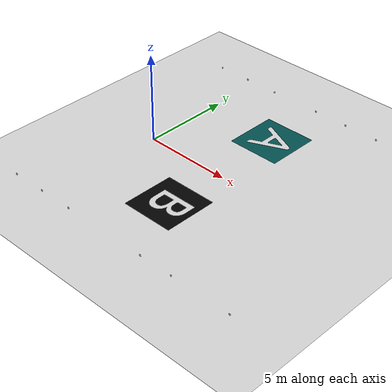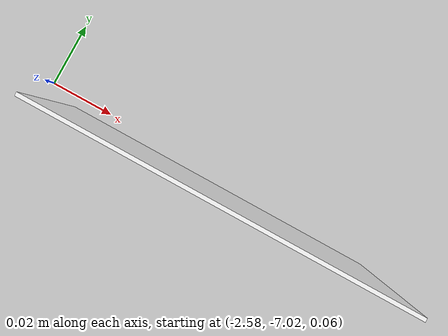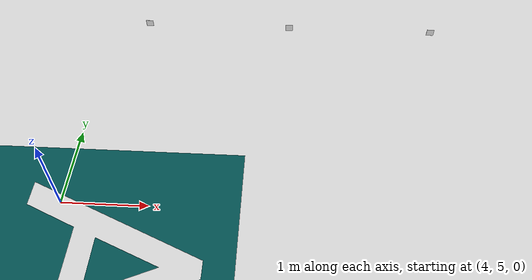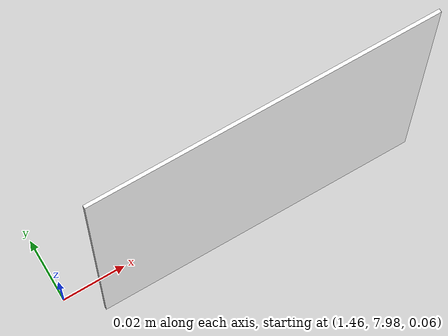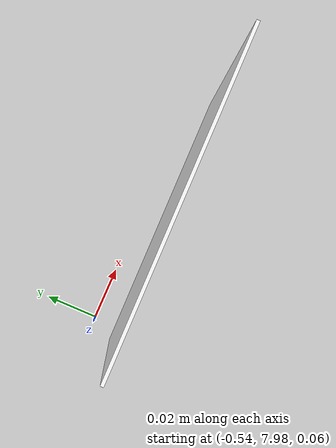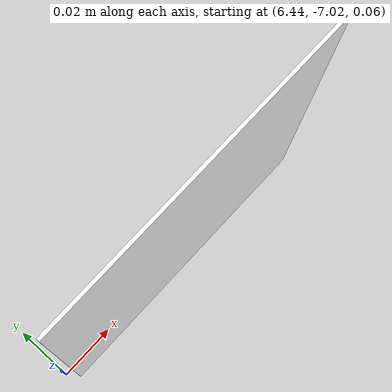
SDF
<sdf version="1.12">
 <world name="empty">
  <physics default="0" name="default_physics" type="ode">
   <max_step_size>0.01</max_step_size>
   <real_time_factor>1</real_time_factor>
   <real_time_update_rate>100</real_time_update_rate>
  </physics>
  <plugin name="gz::sim::systems::Physics" filename="gz-sim-physics-system"/>
  <plugin name="gz::sim::systems::UserCommands" filename="gz-sim-user-commands-system"/>
  <plugin name="gz::sim::systems::SceneBroadcaster" filename="gz-sim-scene-broadcaster-system"/>
  <plugin name="gz::sim::systems::Contact" filename="gz-sim-contact-system"/>
  <gravity>0 0 -9.8000000000000007</gravity>
  <magnetic_field>5.5644999999999998e-06 2.2875799999999999e-05 -4.2388400000000002e-05</magnetic_field>
  <atmosphere type="adiabatic"/>
  <scene>
   <ambient>0.400000006 0.400000006 0.400000006 1</ambient>
   <background>0.699999988 0.699999988 0.699999988 1</background>
   <shadows>true</shadows>
  </scene>
  <model name="ground_plane">
   <static>true</static>
   <link name="link">
    <collision name="collision">
     <geometry><plane><normal>0 0 1</normal><size>100 100</size></plane></geometry>
    </collision>
    <visual name="visual">
     <geometry><plane><normal>0 0 1</normal><size>100 100</size></plane></geometry>
     <material>
      <ambient>0.800000012 0.800000012 0.800000012 1</ambient>
      <diffuse>0.800000012 0.800000012 0.800000012 1</diffuse>
      <specular>0.800000012 0.800000012 0.800000012 1</specular>
     </material>
    </visual>
    <inertial>
     <mass>1</mass>
     <inertia><ixx>1</ixx><ixy>0</ixy><ixz>0</ixz><iyy>1</iyy><iyz>0</iyz><izz>1</izz></inertia>
    </inertial>
   </link>
  </model>
  <include>
   <uri>model://Apriltag36_11_00002</uri>
   <name>tag36_11_00001</name>
   <pose>-2.4924781322479248 7.9712347984313965 0.11262844502925873 0 -1.5708 1.5708</pose>
   <static>true</static>
  </include>
  <include>
   <uri>model://Apriltag36_11_00003</uri>
   <name>tag36_11_00002</name>
   <pose>-0.49521669745445251 7.9712347984313965 0.11262844502925873 0 -1.5708 1.5708</pose>
   <static>true</static>
  </include>
  <include>
   <uri>model://Apriltag36_11_00004</uri>
   <name>tag36_11_00003</name>
   <pose>1.5189411105305899 7.9712347984313965 0.11262844502925873 0 -1.5708 1.5708</pose>
   <static>true</static>
  </include>
  <include>
   <uri>model://Apriltag36_11_00005</uri>
   <name>tag36_11_00004</name>
   <pose>4.4940232445384698 7.9712347984313965 0.11262844502925873 0 -1.5708 1.5708</pose>
   <static>true</static>
  </include>
  <include>
   <uri>model://Apriltag36_11_00006</uri>
   <name>tag36_11_00005</name>
   <pose>6.5056252111412327 7.9712347984313965 0.11262844502925873 0 -1.5708 1.5708</pose>
   <static>true</static>
  </include>
  <include>
   <uri>model://Apriltag36_11_00007</uri>
   <name>tag36_11_00006</name>
   <pose>8.5118265151977539 7.9712347984313965 0.11262844502925873 0 -1.5708 1.5708</pose>
   <static>true</static>
  </include>
  <include>
   <uri>model://Apriltag36_11_00003</uri>
   <name>tag36_11_00001_0</name>
   <pose>8.4743044491622062 -7.0236401557922363 0.11262844502925873 1.5708 -1.5708 -3.1416</pose>
   <static>true</static>
  </include>
  <include>
   <uri>model://Apriltag36_11_00004</uri>
   <name>tag36_11_00002_0</name>
   <pose>6.4928137260731162 -7.0236401557922363 0.11262844502925873 1.5708 -1.5708 -3.1416</pose>
   <static>true</static>
  </include>
  <include>
   <uri>model://Apriltag36_11_00005</uri>
   <name>tag36_11_00003_0</name>
   <pose>1.4930427191125051 -7.0236401557922363 0.11262844502925873 1.5708 -1.5708 -3.1416</pose>
   <static>true</static>
  </include>
  <include>
   <uri>model://Apriltag36_11_00006</uri>
   <name>tag36_11_00004_0</name>
   <pose>-0.51939174422231449 -7.0236401557922363 0.11262844502925873 1.5708 -1.5708 -3.1416</pose>
   <static>true</static>
  </include>
  <include>
   <uri>model://Apriltag36_11_00007</uri>
   <name>tag36_11_00005_0</name>
   <pose>-2.5207300186157227 -7.0236401557922363 0.11262844502925873 1.5708 -1.5708 -3.1416</pose>
   <static>true</static>
  </include>
  <include>
   <uri>model://Apriltag36_11_00002</uri>
   <name>tag36_11_00006_0</name>
   <pose>11.96028590238253 -7.02364015579223636 0.11262844502925873 1.5708 -1.5708 -3.1416</pose>
   <static>true</static>
  </include>
  <include>
   <uri>model://A_letter</uri>
   <name>A_letter</name>
   <pose>4.225921630859375 -0.89287352561950684 0.0010000000474974513 0 0 -1.5708</pose>
  </include>
  <include>
   <uri>model://B_letter</uri>
   <name>B_letter</name>
   <pose>4.225921630859375 -3.3017544746398926 0.0010000000474974513 0 0 -1.5708</pose>
  </include>
  <light name="sun" type="directional">
   <pose>0 0 10 0 0 0</pose>
   <intensity>1</intensity>
   <direction>-0.5 0.10000000000000001 -0.90000000000000002</direction>
   <diffuse>0.800000012 0.800000012 0.800000012 1</diffuse>
   <specular>0.200000003 0.200000003 0.200000003 1</specular>
   <attenuation>
    <range>1000</range>
    <linear>0.01</linear>
    <constant>0.90000000000000002</constant>
    <quadratic>0.001</quadratic>
   </attenuation>
   <spot><inner_angle>0</inner_angle><outer_angle>0</outer_angle><falloff>0</falloff></spot>
  </light>
 </world>
</sdf>

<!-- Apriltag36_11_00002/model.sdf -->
<sdf version="1.9">
  <model name="tag36_11_00002">
    <static>true</static>
    <link name="link">
      <visual name="visual">
        <geometry>
          <box>
            <size>0.1 0.1 0.001</size>
          </box>
        </geometry>
        <material>
          <ambient>1 1 1 1</ambient>
          <diffuse>1 1 1 1</diffuse>
          <specular>0.5 0.5 0.5 1</specular>
          <pbr>
            <metal>
              <albedo_map>materials/textures/tag36_11_00002.png</albedo_map>
              <roughness>0.5</roughness>
              <metalness>0.0</metalness>
            </metal>
          </pbr>
        </material>
      </visual>
      <collision name="collision">
        <geometry>
          <box>
            <size>0.1 0.1 0.001</size>
          </box>
        </geometry>
      </collision>
    </link>
  </model>
</sdf>

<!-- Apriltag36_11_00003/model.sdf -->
<sdf version="1.9">
  <model name="tag36_11_00003">
    <static>true</static>
    <link name="link">
      <visual name="visual">
        <geometry>
          <box>
            <size>0.1 0.1 0.001</size>
          </box>
        </geometry>
        <material>
          <ambient>1 1 1 1</ambient>
          <diffuse>1 1 1 1</diffuse>
          <specular>0.5 0.5 0.5 1</specular>
          <pbr>
            <metal>
              <albedo_map>materials/textures/tag36_11_00003.png</albedo_map>
              <roughness>0.5</roughness>
              <metalness>0.0</metalness>
            </metal>
          </pbr>
        </material>
      </visual>
      <collision name="collision">
        <geometry>
          <box>
            <size>0.1 0.1 0.001</size>
          </box>
        </geometry>
      </collision>
    </link>
  </model>
</sdf>

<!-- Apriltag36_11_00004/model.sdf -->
<sdf version="1.9">
  <model name="tag36_11_00004">
    <static>true</static>
    <link name="link">
      <visual name="visual">
        <geometry>
          <box>
            <size>0.1 0.1 0.001</size>
          </box>
        </geometry>
        <material>
          <ambient>1 1 1 1</ambient>
          <diffuse>1 1 1 1</diffuse>
          <specular>0.5 0.5 0.5 1</specular>
          <pbr>
            <metal>
              <albedo_map>materials/textures/tag36_11_00004.png</albedo_map>
              <roughness>0.5</roughness>
              <metalness>0.0</metalness>
            </metal>
          </pbr>
        </material>
      </visual>
      <collision name="collision">
        <geometry>
          <box>
            <size>0.1 0.1 0.001</size>
          </box>
        </geometry>
      </collision>
    </link>
  </model>
</sdf>

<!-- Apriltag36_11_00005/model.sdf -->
<sdf version="1.9">
  <model name="tag36_11_00005">
    <static>true</static>
    <link name="link">
      <visual name="visual">
        <geometry>
          <box>
            <size>0.1 0.1 0.001</size>
          </box>
        </geometry>
        <material>
          <ambient>1 1 1 1</ambient>
          <diffuse>1 1 1 1</diffuse>
          <specular>0.5 0.5 0.5 1</specular>
          <pbr>
            <metal>
              <albedo_map>materials/textures/tag36_11_00005.png</albedo_map>
              <roughness>0.5</roughness>
              <metalness>0.0</metalness>
            </metal>
          </pbr>
        </material>
      </visual>
      <collision name="collision">
        <geometry>
          <box>
            <size>0.1 0.1 0.001</size>
          </box>
        </geometry>
      </collision>
    </link>
  </model>
</sdf>

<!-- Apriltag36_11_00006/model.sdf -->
<sdf version="1.9">
  <model name="tag36_11_00006">
    <static>true</static>
    <link name="link">
      <visual name="visual">
        <geometry>
          <box>
            <size>0.1 0.1 0.001</size>
          </box>
        </geometry>
        <material>
          <ambient>1 1 1 1</ambient>
          <diffuse>1 1 1 1</diffuse>
          <specular>0.5 0.5 0.5 1</specular>
          <pbr>
            <metal>
              <albedo_map>materials/textures/tag36_11_00006.png</albedo_map>
              <roughness>0.5</roughness>
              <metalness>0.0</metalness>
            </metal>
          </pbr>
        </material>
      </visual>
      <collision name="collision">
        <geometry>
          <box>
            <size>0.1 0.1 0.001</size>
          </box>
        </geometry>
      </collision>
    </link>
  </model>
</sdf>

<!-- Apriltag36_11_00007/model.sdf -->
<sdf version="1.9">
  <model name="tag36_11_00007">
    <static>true</static>
    <link name="link">
      <visual name="visual">
        <geometry>
          <box>
            <size>0.1 0.1 0.001</size>
          </box>
        </geometry>
        <material>
          <ambient>1 1 1 1</ambient>
          <diffuse>1 1 1 1</diffuse>
          <specular>0.5 0.5 0.5 1</specular>
          <pbr>
            <metal>
              <albedo_map>materials/textures/tag36_11_00007.png</albedo_map>
              <roughness>0.5</roughness>
              <metalness>0.0</metalness>
            </metal>
          </pbr>
        </material>
      </visual>
      <collision name="collision">
        <geometry>
          <box>
            <size>0.1 0.1 0.001</size>
          </box>
        </geometry>
      </collision>
    </link>
  </model>
</sdf>

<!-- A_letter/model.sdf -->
<sdf version="1.6">
  <model name="A_letter">
    <static>true</static>
    <link name="plate">
      <inertial>
        <mass>1</mass>
        <inertia>
          <ixx>1</ixx>
          <ixy>0</ixy>
          <ixz>0</ixz>
          <iyy>1</iyy>
          <iyz>0</iyz>
          <izz>1</izz>
        </inertia>
      </inertial>

      <collision name="collision">
        <geometry>
          <box>
            <size>13 3 0.01</size>
          </box>
        </geometry>
      </collision>

      <visual name="visual">
        <geometry>
          <mesh>
            <uri>meshes/A_letter.dae</uri>
          </mesh>
        </geometry>
      </visual>
    </link>
  </model>
</sdf>

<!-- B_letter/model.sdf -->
<sdf version="1.6">
  <model name="B_letter">
    <static>true</static>
    <link name="plate">
      <inertial>
        <mass>1</mass>
        <inertia>
          <ixx>1</ixx>
          <ixy>0</ixy>
          <ixz>0</ixz>
          <iyy>1</iyy>
          <iyz>0</iyz>
          <izz>1</izz>
        </inertia>
      </inertial>

      <collision name="collision">
        <geometry>
          <box>
            <size>13 3 0.01</size>
          </box>
        </geometry>
      </collision>

      <visual name="visual">
        <geometry>
          <mesh>
            <uri>meshes/B_letter.dae</uri>
          </mesh>
        </geometry>
      </visual>
    </link>
  </model>
</sdf>
